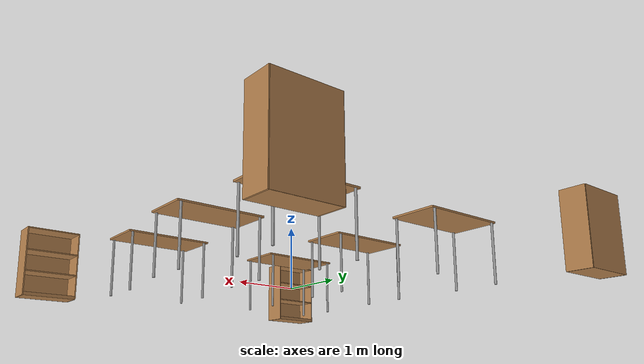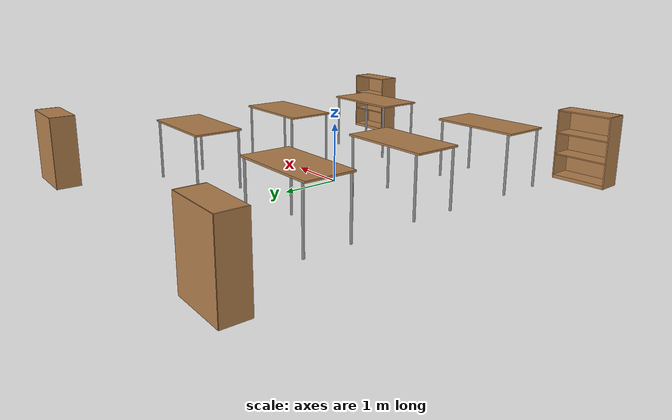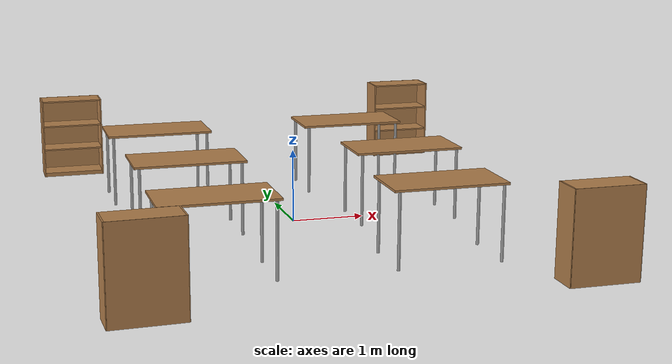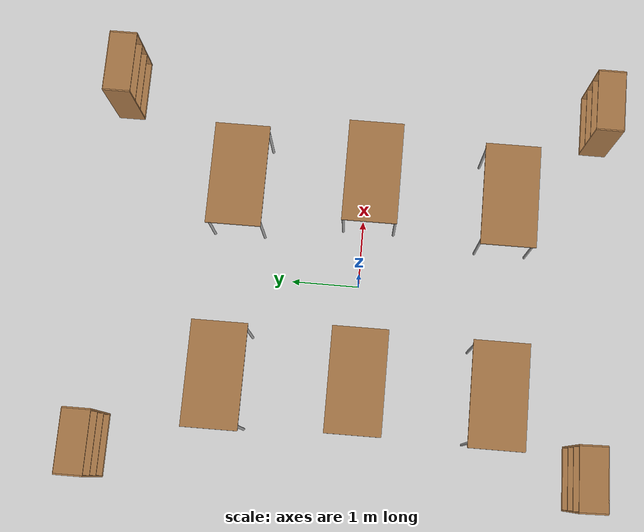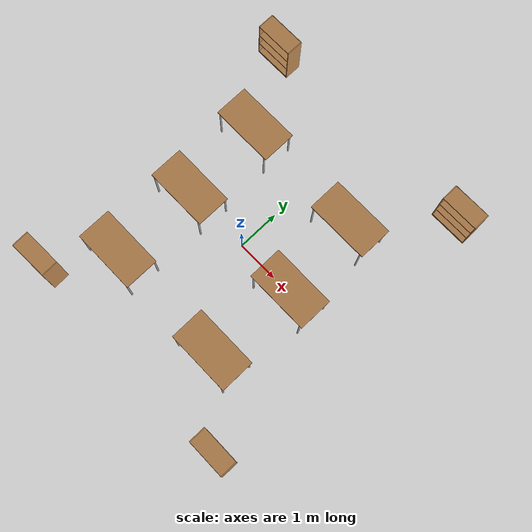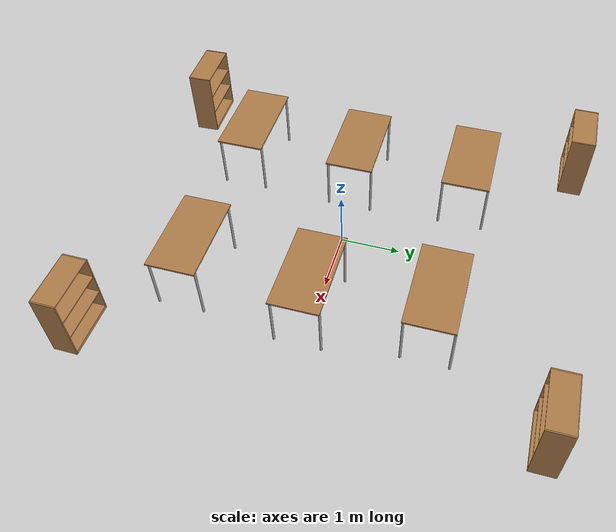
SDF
<?xml version='1.0'?>
<sdf version='1.6'>
  <model name='room2'>
    <model name='bookshelf'>
      <static>1</static>
      <link name='link'>
        <inertial>
          <mass>1</mass>
        </inertial>
        <collision name='back'>
          <pose frame=''>0 0.005 0.6 0 -0 0</pose>
          <geometry>
            <box>
              <size>0.9 0.01 1.2</size>
            </box>
          </geometry>
        </collision>
        <visual name='visual1'>
          <pose frame=''>0 0.005 0.6 0 -0 0</pose>
          <geometry>
            <box>
              <size>0.9 0.01 1.2</size>
            </box>
          </geometry>
          <material>
            <script>
              <uri>file://media/materials/scripts/gazebo.material</uri>
              <name>Gazebo/Wood</name>
            </script>
          </material>
        </visual>
        <collision name='left_side'>
          <pose frame=''>0.45 -0.195 0.6 0 -0 0</pose>
          <geometry>
            <box>
              <size>0.02 0.4 1.2</size>
            </box>
          </geometry>
        </collision>
        <visual name='visual2'>
          <pose frame=''>0.45 -0.195 0.6 0 -0 0</pose>
          <geometry>
            <box>
              <size>0.02 0.4 1.2</size>
            </box>
          </geometry>
          <material>
            <script>
              <uri>file://media/materials/scripts/gazebo.material</uri>
              <name>Gazebo/Wood</name>
            </script>
          </material>
        </visual>
        <collision name='right_side'>
          <pose frame=''>-0.45 -0.195 0.6 0 -0 0</pose>
          <geometry>
            <box>
              <size>0.02 0.4 1.2</size>
            </box>
          </geometry>
        </collision>
        <visual name='visual3'>
          <pose frame=''>-0.45 -0.195 0.6 0 -0 0</pose>
          <geometry>
            <box>
              <size>0.02 0.4 1.2</size>
            </box>
          </geometry>
          <material>
            <script>
              <uri>file://media/materials/scripts/gazebo.material</uri>
              <name>Gazebo/Wood</name>
            </script>
          </material>
        </visual>
        <collision name='bottom'>
          <pose frame=''>0 -0.195 0.03 0 -0 0</pose>
          <geometry>
            <box>
              <size>0.88 0.4 0.06</size>
            </box>
          </geometry>
        </collision>
        <visual name='visual4'>
          <pose frame=''>0 -0.195 0.03 0 -0 0</pose>
          <geometry>
            <box>
              <size>0.88 0.4 0.06</size>
            </box>
          </geometry>
          <material>
            <script>
              <uri>file://media/materials/scripts/gazebo.material</uri>
              <name>Gazebo/Wood</name>
            </script>
          </material>
        </visual>
        <collision name='top'>
          <pose frame=''>0 -0.195 1.19 0 -0 0</pose>
          <geometry>
            <box>
              <size>0.88 0.4 0.02</size>
            </box>
          </geometry>
        </collision>
        <visual name='visual5'>
          <pose frame=''>0 -0.195 1.19 0 -0 0</pose>
          <geometry>
            <box>
              <size>0.88 0.4 0.02</size>
            </box>
          </geometry>
          <material>
            <script>
              <uri>file://media/materials/scripts/gazebo.material</uri>
              <name>Gazebo/Wood</name>
            </script>
          </material>
        </visual>
        <collision name='low_shelf'>
          <pose frame=''>0 -0.195 0.43 0 -0 0</pose>
          <geometry>
            <box>
              <size>0.88 0.4 0.02</size>
            </box>
          </geometry>
        </collision>
        <visual name='visual6'>
          <pose frame=''>0 -0.195 0.43 0 -0 0</pose>
          <geometry>
            <box>
              <size>0.88 0.4 0.02</size>
            </box>
          </geometry>
          <material>
            <script>
              <uri>file://media/materials/scripts/gazebo.material</uri>
              <name>Gazebo/Wood</name>
            </script>
          </material>
        </visual>
        <collision name='high_shelf'>
          <pose frame=''>0 -0.195 0.8 0 -0 0</pose>
          <geometry>
            <box>
              <size>0.88 0.4 0.02</size>
            </box>
          </geometry>
        </collision>
        <visual name='visual7'>
          <pose frame=''>0 -0.195 0.8 0 -0 0</pose>
          <geometry>
            <box>
              <size>0.88 0.4 0.02</size>
            </box>
          </geometry>
          <material>
            <script>
              <uri>file://media/materials/scripts/gazebo.material</uri>
              <name>Gazebo/Wood</name>
            </script>
          </material>
        </visual>
      </link>
      <pose frame=''>2.83384 3.91449 -0.000271 0 -0 0</pose>
    </model>
    <model name='bookshelf_0'>
      <static>1</static>
      <link name='link'>
        <inertial>
          <mass>1</mass>
        </inertial>
        <collision name='back'>
          <pose frame=''>0 0.005 0.6 0 -0 0</pose>
          <geometry>
            <box>
              <size>0.9 0.01 1.2</size>
            </box>
          </geometry>
        </collision>
        <visual name='visual1'>
          <pose frame=''>0 0.005 0.6 0 -0 0</pose>
          <geometry>
            <box>
              <size>0.9 0.01 1.2</size>
            </box>
          </geometry>
          <material>
            <script>
              <uri>file://media/materials/scripts/gazebo.material</uri>
              <name>Gazebo/Wood</name>
            </script>
          </material>
        </visual>
        <collision name='left_side'>
          <pose frame=''>0.45 -0.195 0.6 0 -0 0</pose>
          <geometry>
            <box>
              <size>0.02 0.4 1.2</size>
            </box>
          </geometry>
        </collision>
        <visual name='visual2'>
          <pose frame=''>0.45 -0.195 0.6 0 -0 0</pose>
          <geometry>
            <box>
              <size>0.02 0.4 1.2</size>
            </box>
          </geometry>
          <material>
            <script>
              <uri>file://media/materials/scripts/gazebo.material</uri>
              <name>Gazebo/Wood</name>
            </script>
          </material>
        </visual>
        <collision name='right_side'>
          <pose frame=''>-0.45 -0.195 0.6 0 -0 0</pose>
          <geometry>
            <box>
              <size>0.02 0.4 1.2</size>
            </box>
          </geometry>
        </collision>
        <visual name='visual3'>
          <pose frame=''>-0.45 -0.195 0.6 0 -0 0</pose>
          <geometry>
            <box>
              <size>0.02 0.4 1.2</size>
            </box>
          </geometry>
          <material>
            <script>
              <uri>file://media/materials/scripts/gazebo.material</uri>
              <name>Gazebo/Wood</name>
            </script>
          </material>
        </visual>
        <collision name='bottom'>
          <pose frame=''>0 -0.195 0.03 0 -0 0</pose>
          <geometry>
            <box>
              <size>0.88 0.4 0.06</size>
            </box>
          </geometry>
        </collision>
        <visual name='visual4'>
          <pose frame=''>0 -0.195 0.03 0 -0 0</pose>
          <geometry>
            <box>
              <size>0.88 0.4 0.06</size>
            </box>
          </geometry>
          <material>
            <script>
              <uri>file://media/materials/scripts/gazebo.material</uri>
              <name>Gazebo/Wood</name>
            </script>
          </material>
        </visual>
        <collision name='top'>
          <pose frame=''>0 -0.195 1.19 0 -0 0</pose>
          <geometry>
            <box>
              <size>0.88 0.4 0.02</size>
            </box>
          </geometry>
        </collision>
        <visual name='visual5'>
          <pose frame=''>0 -0.195 1.19 0 -0 0</pose>
          <geometry>
            <box>
              <size>0.88 0.4 0.02</size>
            </box>
          </geometry>
          <material>
            <script>
              <uri>file://media/materials/scripts/gazebo.material</uri>
              <name>Gazebo/Wood</name>
            </script>
          </material>
        </visual>
        <collision name='low_shelf'>
          <pose frame=''>0 -0.195 0.43 0 -0 0</pose>
          <geometry>
            <box>
              <size>0.88 0.4 0.02</size>
            </box>
          </geometry>
        </collision>
        <visual name='visual6'>
          <pose frame=''>0 -0.195 0.43 0 -0 0</pose>
          <geometry>
            <box>
              <size>0.88 0.4 0.02</size>
            </box>
          </geometry>
          <material>
            <script>
              <uri>file://media/materials/scripts/gazebo.material</uri>
              <name>Gazebo/Wood</name>
            </script>
          </material>
        </visual>
        <collision name='high_shelf'>
          <pose frame=''>0 -0.195 0.8 0 -0 0</pose>
          <geometry>
            <box>
              <size>0.88 0.4 0.02</size>
            </box>
          </geometry>
        </collision>
        <visual name='visual7'>
          <pose frame=''>0 -0.195 0.8 0 -0 0</pose>
          <geometry>
            <box>
              <size>0.88 0.4 0.02</size>
            </box>
          </geometry>
          <material>
            <script>
              <uri>file://media/materials/scripts/gazebo.material</uri>
              <name>Gazebo/Wood</name>
            </script>
          </material>
        </visual>
      </link>
      <pose frame=''>-2.64723 3.87983 -0.000271 0 -0 0</pose>
    </model>
    <model name='bookshelf_1'>
      <static>1</static>
      <link name='link'>
        <inertial>
          <mass>1</mass>
        </inertial>
        <collision name='back'>
          <pose frame=''>0 0.005 0.6 0 -0 0</pose>
          <geometry>
            <box>
              <size>0.9 0.01 1.2</size>
            </box>
          </geometry>
        </collision>
        <visual name='visual1'>
          <pose frame=''>0 0.005 0.6 0 -0 0</pose>
          <geometry>
            <box>
              <size>0.9 0.01 1.2</size>
            </box>
          </geometry>
          <material>
            <script>
              <uri>file://media/materials/scripts/gazebo.material</uri>
              <name>Gazebo/Wood</name>
            </script>
          </material>
        </visual>
        <collision name='left_side'>
          <pose frame=''>0.45 -0.195 0.6 0 -0 0</pose>
          <geometry>
            <box>
              <size>0.02 0.4 1.2</size>
            </box>
          </geometry>
        </collision>
        <visual name='visual2'>
          <pose frame=''>0.45 -0.195 0.6 0 -0 0</pose>
          <geometry>
            <box>
              <size>0.02 0.4 1.2</size>
            </box>
          </geometry>
          <material>
            <script>
              <uri>file://media/materials/scripts/gazebo.material</uri>
              <name>Gazebo/Wood</name>
            </script>
          </material>
        </visual>
        <collision name='right_side'>
          <pose frame=''>-0.45 -0.195 0.6 0 -0 0</pose>
          <geometry>
            <box>
              <size>0.02 0.4 1.2</size>
            </box>
          </geometry>
        </collision>
        <visual name='visual3'>
          <pose frame=''>-0.45 -0.195 0.6 0 -0 0</pose>
          <geometry>
            <box>
              <size>0.02 0.4 1.2</size>
            </box>
          </geometry>
          <material>
            <script>
              <uri>file://media/materials/scripts/gazebo.material</uri>
              <name>Gazebo/Wood</name>
            </script>
          </material>
        </visual>
        <collision name='bottom'>
          <pose frame=''>0 -0.195 0.03 0 -0 0</pose>
          <geometry>
            <box>
              <size>0.88 0.4 0.06</size>
            </box>
          </geometry>
        </collision>
        <visual name='visual4'>
          <pose frame=''>0 -0.195 0.03 0 -0 0</pose>
          <geometry>
            <box>
              <size>0.88 0.4 0.06</size>
            </box>
          </geometry>
          <material>
            <script>
              <uri>file://media/materials/scripts/gazebo.material</uri>
              <name>Gazebo/Wood</name>
            </script>
          </material>
        </visual>
        <collision name='top'>
          <pose frame=''>0 -0.195 1.19 0 -0 0</pose>
          <geometry>
            <box>
              <size>0.88 0.4 0.02</size>
            </box>
          </geometry>
        </collision>
        <visual name='visual5'>
          <pose frame=''>0 -0.195 1.19 0 -0 0</pose>
          <geometry>
            <box>
              <size>0.88 0.4 0.02</size>
            </box>
          </geometry>
          <material>
            <script>
              <uri>file://media/materials/scripts/gazebo.material</uri>
              <name>Gazebo/Wood</name>
            </script>
          </material>
        </visual>
        <collision name='low_shelf'>
          <pose frame=''>0 -0.195 0.43 0 -0 0</pose>
          <geometry>
            <box>
              <size>0.88 0.4 0.02</size>
            </box>
          </geometry>
        </collision>
        <visual name='visual6'>
          <pose frame=''>0 -0.195 0.43 0 -0 0</pose>
          <geometry>
            <box>
              <size>0.88 0.4 0.02</size>
            </box>
          </geometry>
          <material>
            <script>
              <uri>file://media/materials/scripts/gazebo.material</uri>
              <name>Gazebo/Wood</name>
            </script>
          </material>
        </visual>
        <collision name='high_shelf'>
          <pose frame=''>0 -0.195 0.8 0 -0 0</pose>
          <geometry>
            <box>
              <size>0.88 0.4 0.02</size>
            </box>
          </geometry>
        </collision>
        <visual name='visual7'>
          <pose frame=''>0 -0.195 0.8 0 -0 0</pose>
          <geometry>
            <box>
              <size>0.88 0.4 0.02</size>
            </box>
          </geometry>
          <material>
            <script>
              <uri>file://media/materials/scripts/gazebo.material</uri>
              <name>Gazebo/Wood</name>
            </script>
          </material>
        </visual>
      </link>
      <pose frame=''>2.81028 -3.6314 -0.000271 0 -0 3.13704</pose>
    </model>
    <model name='bookshelf_2'>
      <static>1</static>
      <link name='link'>
        <inertial>
          <mass>1</mass>
        </inertial>
        <collision name='back'>
          <pose frame=''>0 0.005 0.6 0 -0 0</pose>
          <geometry>
            <box>
              <size>0.9 0.01 1.2</size>
            </box>
          </geometry>
        </collision>
        <visual name='visual1'>
          <pose frame=''>0 0.005 0.6 0 -0 0</pose>
          <geometry>
            <box>
              <size>0.9 0.01 1.2</size>
            </box>
          </geometry>
          <material>
            <script>
              <uri>file://media/materials/scripts/gazebo.material</uri>
              <name>Gazebo/Wood</name>
            </script>
          </material>
        </visual>
        <collision name='left_side'>
          <pose frame=''>0.45 -0.195 0.6 0 -0 0</pose>
          <geometry>
            <box>
              <size>0.02 0.4 1.2</size>
            </box>
          </geometry>
        </collision>
        <visual name='visual2'>
          <pose frame=''>0.45 -0.195 0.6 0 -0 0</pose>
          <geometry>
            <box>
              <size>0.02 0.4 1.2</size>
            </box>
          </geometry>
          <material>
            <script>
              <uri>file://media/materials/scripts/gazebo.material</uri>
              <name>Gazebo/Wood</name>
            </script>
          </material>
        </visual>
        <collision name='right_side'>
          <pose frame=''>-0.45 -0.195 0.6 0 -0 0</pose>
          <geometry>
            <box>
              <size>0.02 0.4 1.2</size>
            </box>
          </geometry>
        </collision>
        <visual name='visual3'>
          <pose frame=''>-0.45 -0.195 0.6 0 -0 0</pose>
          <geometry>
            <box>
              <size>0.02 0.4 1.2</size>
            </box>
          </geometry>
          <material>
            <script>
              <uri>file://media/materials/scripts/gazebo.material</uri>
              <name>Gazebo/Wood</name>
            </script>
          </material>
        </visual>
        <collision name='bottom'>
          <pose frame=''>0 -0.195 0.03 0 -0 0</pose>
          <geometry>
            <box>
              <size>0.88 0.4 0.06</size>
            </box>
          </geometry>
        </collision>
        <visual name='visual4'>
          <pose frame=''>0 -0.195 0.03 0 -0 0</pose>
          <geometry>
            <box>
              <size>0.88 0.4 0.06</size>
            </box>
          </geometry>
          <material>
            <script>
              <uri>file://media/materials/scripts/gazebo.material</uri>
              <name>Gazebo/Wood</name>
            </script>
          </material>
        </visual>
        <collision name='top'>
          <pose frame=''>0 -0.195 1.19 0 -0 0</pose>
          <geometry>
            <box>
              <size>0.88 0.4 0.02</size>
            </box>
          </geometry>
        </collision>
        <visual name='visual5'>
          <pose frame=''>0 -0.195 1.19 0 -0 0</pose>
          <geometry>
            <box>
              <size>0.88 0.4 0.02</size>
            </box>
          </geometry>
          <material>
            <script>
              <uri>file://media/materials/scripts/gazebo.material</uri>
              <name>Gazebo/Wood</name>
            </script>
          </material>
        </visual>
        <collision name='low_shelf'>
          <pose frame=''>0 -0.195 0.43 0 -0 0</pose>
          <geometry>
            <box>
              <size>0.88 0.4 0.02</size>
            </box>
          </geometry>
        </collision>
        <visual name='visual6'>
          <pose frame=''>0 -0.195 0.43 0 -0 0</pose>
          <geometry>
            <box>
              <size>0.88 0.4 0.02</size>
            </box>
          </geometry>
          <material>
            <script>
              <uri>file://media/materials/scripts/gazebo.material</uri>
              <name>Gazebo/Wood</name>
            </script>
          </material>
        </visual>
        <collision name='high_shelf'>
          <pose frame=''>0 -0.195 0.8 0 -0 0</pose>
          <geometry>
            <box>
              <size>0.88 0.4 0.02</size>
            </box>
          </geometry>
        </collision>
        <visual name='visual7'>
          <pose frame=''>0 -0.195 0.8 0 -0 0</pose>
          <geometry>
            <box>
              <size>0.88 0.4 0.02</size>
            </box>
          </geometry>
          <material>
            <script>
              <uri>file://media/materials/scripts/gazebo.material</uri>
              <name>Gazebo/Wood</name>
            </script>
          </material>
        </visual>
      </link>
      <pose frame=''>-2.57339 -3.57221 0.002437 0 0 -3.11122</pose>
    </model>
    <model name='table'>
      <static>1</static>
      <link name='link'>
        <collision name='surface'>
          <pose frame=''>0 0 1 0 -0 0</pose>
          <geometry>
            <box>
              <size>1.5 0.8 0.03</size>
            </box>
          </geometry>
          <surface>
            <friction>
              <ode>
                <mu>0.6</mu>
                <mu2>0.6</mu2>
              </ode>
            </friction>
          </surface>
        </collision>
        <visual name='visual1'>
          <pose frame=''>0 0 1 0 -0 0</pose>
          <geometry>
            <box>
              <size>1.5 0.8 0.03</size>
            </box>
          </geometry>
          <material>
            <script>
              <uri>file://media/materials/scripts/gazebo.material</uri>
              <name>Gazebo/Wood</name>
            </script>
          </material>
        </visual>
        <collision name='front_left_leg'>
          <pose frame=''>0.68 0.38 0.5 0 -0 0</pose>
          <geometry>
            <cylinder>
              <radius>0.02</radius>
              <length>1</length>
            </cylinder>
          </geometry>
        </collision>
        <visual name='front_left_leg'>
          <pose frame=''>0.68 0.38 0.5 0 -0 0</pose>
          <geometry>
            <cylinder>
              <radius>0.02</radius>
              <length>1</length>
            </cylinder>
          </geometry>
          <material>
            <script>
              <uri>file://media/materials/scripts/gazebo.material</uri>
              <name>Gazebo/Grey</name>
            </script>
          </material>
        </visual>
        <collision name='front_right_leg'>
          <pose frame=''>0.68 -0.38 0.5 0 -0 0</pose>
          <geometry>
            <cylinder>
              <radius>0.02</radius>
              <length>1</length>
            </cylinder>
          </geometry>
        </collision>
        <visual name='front_right_leg'>
          <pose frame=''>0.68 -0.38 0.5 0 -0 0</pose>
          <geometry>
            <cylinder>
              <radius>0.02</radius>
              <length>1</length>
            </cylinder>
          </geometry>
          <material>
            <script>
              <uri>file://media/materials/scripts/gazebo.material</uri>
              <name>Gazebo/Grey</name>
            </script>
          </material>
        </visual>
        <collision name='back_right_leg'>
          <pose frame=''>-0.68 -0.38 0.5 0 -0 0</pose>
          <geometry>
            <cylinder>
              <radius>0.02</radius>
              <length>1</length>
            </cylinder>
          </geometry>
        </collision>
        <visual name='back_right_leg'>
          <pose frame=''>-0.68 -0.38 0.5 0 -0 0</pose>
          <geometry>
            <cylinder>
              <radius>0.02</radius>
              <length>1</length>
            </cylinder>
          </geometry>
          <material>
            <script>
              <uri>file://media/materials/scripts/gazebo.material</uri>
              <name>Gazebo/Grey</name>
            </script>
          </material>
        </visual>
        <collision name='back_left_leg'>
          <pose frame=''>-0.68 0.38 0.5 0 -0 0</pose>
          <geometry>
            <cylinder>
              <radius>0.02</radius>
              <length>1</length>
            </cylinder>
          </geometry>
        </collision>
        <visual name='back_left_leg'>
          <pose frame=''>-0.68 0.38 0.5 0 -0 0</pose>
          <geometry>
            <cylinder>
              <radius>0.02</radius>
              <length>1</length>
            </cylinder>
          </geometry>
          <material>
            <script>
              <uri>file://media/materials/scripts/gazebo.material</uri>
              <name>Gazebo/Grey</name>
            </script>
          </material>
        </visual>
      </link>
      <pose frame=''>1.32961 1.85544 -0.000271 0 -0 0</pose>
    </model>
    <model name='table_0'>
      <static>1</static>
      <link name='link'>
        <collision name='surface'>
          <pose frame=''>0 0 1 0 -0 0</pose>
          <geometry>
            <box>
              <size>1.5 0.8 0.03</size>
            </box>
          </geometry>
          <surface>
            <friction>
              <ode>
                <mu>0.6</mu>
                <mu2>0.6</mu2>
              </ode>
            </friction>
          </surface>
        </collision>
        <visual name='visual1'>
          <pose frame=''>0 0 1 0 -0 0</pose>
          <geometry>
            <box>
              <size>1.5 0.8 0.03</size>
            </box>
          </geometry>
          <material>
            <script>
              <uri>file://media/materials/scripts/gazebo.material</uri>
              <name>Gazebo/Wood</name>
            </script>
          </material>
        </visual>
        <collision name='front_left_leg'>
          <pose frame=''>0.68 0.38 0.5 0 -0 0</pose>
          <geometry>
            <cylinder>
              <radius>0.02</radius>
              <length>1</length>
            </cylinder>
          </geometry>
        </collision>
        <visual name='front_left_leg'>
          <pose frame=''>0.68 0.38 0.5 0 -0 0</pose>
          <geometry>
            <cylinder>
              <radius>0.02</radius>
              <length>1</length>
            </cylinder>
          </geometry>
          <material>
            <script>
              <uri>file://media/materials/scripts/gazebo.material</uri>
              <name>Gazebo/Grey</name>
            </script>
          </material>
        </visual>
        <collision name='front_right_leg'>
          <pose frame=''>0.68 -0.38 0.5 0 -0 0</pose>
          <geometry>
            <cylinder>
              <radius>0.02</radius>
              <length>1</length>
            </cylinder>
          </geometry>
        </collision>
        <visual name='front_right_leg'>
          <pose frame=''>0.68 -0.38 0.5 0 -0 0</pose>
          <geometry>
            <cylinder>
              <radius>0.02</radius>
              <length>1</length>
            </cylinder>
          </geometry>
          <material>
            <script>
              <uri>file://media/materials/scripts/gazebo.material</uri>
              <name>Gazebo/Grey</name>
            </script>
          </material>
        </visual>
        <collision name='back_right_leg'>
          <pose frame=''>-0.68 -0.38 0.5 0 -0 0</pose>
          <geometry>
            <cylinder>
              <radius>0.02</radius>
              <length>1</length>
            </cylinder>
          </geometry>
        </collision>
        <visual name='back_right_leg'>
          <pose frame=''>-0.68 -0.38 0.5 0 -0 0</pose>
          <geometry>
            <cylinder>
              <radius>0.02</radius>
              <length>1</length>
            </cylinder>
          </geometry>
          <material>
            <script>
              <uri>file://media/materials/scripts/gazebo.material</uri>
              <name>Gazebo/Grey</name>
            </script>
          </material>
        </visual>
        <collision name='back_left_leg'>
          <pose frame=''>-0.68 0.38 0.5 0 -0 0</pose>
          <geometry>
            <cylinder>
              <radius>0.02</radius>
              <length>1</length>
            </cylinder>
          </geometry>
        </collision>
        <visual name='back_left_leg'>
          <pose frame=''>-0.68 0.38 0.5 0 -0 0</pose>
          <geometry>
            <cylinder>
              <radius>0.02</radius>
              <length>1</length>
            </cylinder>
          </geometry>
          <material>
            <script>
              <uri>file://media/materials/scripts/gazebo.material</uri>
              <name>Gazebo/Grey</name>
            </script>
          </material>
        </visual>
      </link>
      <pose frame=''>1.52578 -0.085101 -0.000271 0 -0 0</pose>
    </model>
    <model name='table_1'>
      <static>1</static>
      <link name='link'>
        <collision name='surface'>
          <pose frame=''>0 0 1 0 -0 0</pose>
          <geometry>
            <box>
              <size>1.5 0.8 0.03</size>
            </box>
          </geometry>
          <surface>
            <friction>
              <ode>
                <mu>0.6</mu>
                <mu2>0.6</mu2>
              </ode>
            </friction>
          </surface>
        </collision>
        <visual name='visual1'>
          <pose frame=''>0 0 1 0 -0 0</pose>
          <geometry>
            <box>
              <size>1.5 0.8 0.03</size>
            </box>
          </geometry>
          <material>
            <script>
              <uri>file://media/materials/scripts/gazebo.material</uri>
              <name>Gazebo/Wood</name>
            </script>
          </material>
        </visual>
        <collision name='front_left_leg'>
          <pose frame=''>0.68 0.38 0.5 0 -0 0</pose>
          <geometry>
            <cylinder>
              <radius>0.02</radius>
              <length>1</length>
            </cylinder>
          </geometry>
        </collision>
        <visual name='front_left_leg'>
          <pose frame=''>0.68 0.38 0.5 0 -0 0</pose>
          <geometry>
            <cylinder>
              <radius>0.02</radius>
              <length>1</length>
            </cylinder>
          </geometry>
          <material>
            <script>
              <uri>file://media/materials/scripts/gazebo.material</uri>
              <name>Gazebo/Grey</name>
            </script>
          </material>
        </visual>
        <collision name='front_right_leg'>
          <pose frame=''>0.68 -0.38 0.5 0 -0 0</pose>
          <geometry>
            <cylinder>
              <radius>0.02</radius>
              <length>1</length>
            </cylinder>
          </geometry>
        </collision>
        <visual name='front_right_leg'>
          <pose frame=''>0.68 -0.38 0.5 0 -0 0</pose>
          <geometry>
            <cylinder>
              <radius>0.02</radius>
              <length>1</length>
            </cylinder>
          </geometry>
          <material>
            <script>
              <uri>file://media/materials/scripts/gazebo.material</uri>
              <name>Gazebo/Grey</name>
            </script>
          </material>
        </visual>
        <collision name='back_right_leg'>
          <pose frame=''>-0.68 -0.38 0.5 0 -0 0</pose>
          <geometry>
            <cylinder>
              <radius>0.02</radius>
              <length>1</length>
            </cylinder>
          </geometry>
        </collision>
        <visual name='back_right_leg'>
          <pose frame=''>-0.68 -0.38 0.5 0 -0 0</pose>
          <geometry>
            <cylinder>
              <radius>0.02</radius>
              <length>1</length>
            </cylinder>
          </geometry>
          <material>
            <script>
              <uri>file://media/materials/scripts/gazebo.material</uri>
              <name>Gazebo/Grey</name>
            </script>
          </material>
        </visual>
        <collision name='back_left_leg'>
          <pose frame=''>-0.68 0.38 0.5 0 -0 0</pose>
          <geometry>
            <cylinder>
              <radius>0.02</radius>
              <length>1</length>
            </cylinder>
          </geometry>
        </collision>
        <visual name='back_left_leg'>
          <pose frame=''>-0.68 0.38 0.5 0 -0 0</pose>
          <geometry>
            <cylinder>
              <radius>0.02</radius>
              <length>1</length>
            </cylinder>
          </geometry>
          <material>
            <script>
              <uri>file://media/materials/scripts/gazebo.material</uri>
              <name>Gazebo/Grey</name>
            </script>
          </material>
        </visual>
      </link>
      <pose frame=''>1.33648 -2.08741 -0.000271 0 -0 0</pose>
    </model>
    <model name='table_2'>
      <static>1</static>
      <link name='link'>
        <collision name='surface'>
          <pose frame=''>0 0 1 0 -0 0</pose>
          <geometry>
            <box>
              <size>1.5 0.8 0.03</size>
            </box>
          </geometry>
          <surface>
            <friction>
              <ode>
                <mu>0.6</mu>
                <mu2>0.6</mu2>
              </ode>
            </friction>
          </surface>
        </collision>
        <visual name='visual1'>
          <pose frame=''>0 0 1 0 -0 0</pose>
          <geometry>
            <box>
              <size>1.5 0.8 0.03</size>
            </box>
          </geometry>
          <material>
            <script>
              <uri>file://media/materials/scripts/gazebo.material</uri>
              <name>Gazebo/Wood</name>
            </script>
          </material>
        </visual>
        <collision name='front_left_leg'>
          <pose frame=''>0.68 0.38 0.5 0 -0 0</pose>
          <geometry>
            <cylinder>
              <radius>0.02</radius>
              <length>1</length>
            </cylinder>
          </geometry>
        </collision>
        <visual name='front_left_leg'>
          <pose frame=''>0.68 0.38 0.5 0 -0 0</pose>
          <geometry>
            <cylinder>
              <radius>0.02</radius>
              <length>1</length>
            </cylinder>
          </geometry>
          <material>
            <script>
              <uri>file://media/materials/scripts/gazebo.material</uri>
              <name>Gazebo/Grey</name>
            </script>
          </material>
        </visual>
        <collision name='front_right_leg'>
          <pose frame=''>0.68 -0.38 0.5 0 -0 0</pose>
          <geometry>
            <cylinder>
              <radius>0.02</radius>
              <length>1</length>
            </cylinder>
          </geometry>
        </collision>
        <visual name='front_right_leg'>
          <pose frame=''>0.68 -0.38 0.5 0 -0 0</pose>
          <geometry>
            <cylinder>
              <radius>0.02</radius>
              <length>1</length>
            </cylinder>
          </geometry>
          <material>
            <script>
              <uri>file://media/materials/scripts/gazebo.material</uri>
              <name>Gazebo/Grey</name>
            </script>
          </material>
        </visual>
        <collision name='back_right_leg'>
          <pose frame=''>-0.68 -0.38 0.5 0 -0 0</pose>
          <geometry>
            <cylinder>
              <radius>0.02</radius>
              <length>1</length>
            </cylinder>
          </geometry>
        </collision>
        <visual name='back_right_leg'>
          <pose frame=''>-0.68 -0.38 0.5 0 -0 0</pose>
          <geometry>
            <cylinder>
              <radius>0.02</radius>
              <length>1</length>
            </cylinder>
          </geometry>
          <material>
            <script>
              <uri>file://media/materials/scripts/gazebo.material</uri>
              <name>Gazebo/Grey</name>
            </script>
          </material>
        </visual>
        <collision name='back_left_leg'>
          <pose frame=''>-0.68 0.38 0.5 0 -0 0</pose>
          <geometry>
            <cylinder>
              <radius>0.02</radius>
              <length>1</length>
            </cylinder>
          </geometry>
        </collision>
        <visual name='back_left_leg'>
          <pose frame=''>-0.68 0.38 0.5 0 -0 0</pose>
          <geometry>
            <cylinder>
              <radius>0.02</radius>
              <length>1</length>
            </cylinder>
          </geometry>
          <material>
            <script>
              <uri>file://media/materials/scripts/gazebo.material</uri>
              <name>Gazebo/Grey</name>
            </script>
          </material>
        </visual>
      </link>
      <pose frame=''>-1.57346 1.88936 -0.000271 0 -0 0</pose>
    </model>
    <model name='table_3'>
      <static>1</static>
      <link name='link'>
        <collision name='surface'>
          <pose frame=''>0 0 1 0 -0 0</pose>
          <geometry>
            <box>
              <size>1.5 0.8 0.03</size>
            </box>
          </geometry>
          <surface>
            <friction>
              <ode>
                <mu>0.6</mu>
                <mu2>0.6</mu2>
              </ode>
            </friction>
          </surface>
        </collision>
        <visual name='visual1'>
          <pose frame=''>0 0 1 0 -0 0</pose>
          <geometry>
            <box>
              <size>1.5 0.8 0.03</size>
            </box>
          </geometry>
          <material>
            <script>
              <uri>file://media/materials/scripts/gazebo.material</uri>
              <name>Gazebo/Wood</name>
            </script>
          </material>
        </visual>
        <collision name='front_left_leg'>
          <pose frame=''>0.68 0.38 0.5 0 -0 0</pose>
          <geometry>
            <cylinder>
              <radius>0.02</radius>
              <length>1</length>
            </cylinder>
          </geometry>
        </collision>
        <visual name='front_left_leg'>
          <pose frame=''>0.68 0.38 0.5 0 -0 0</pose>
          <geometry>
            <cylinder>
              <radius>0.02</radius>
              <length>1</length>
            </cylinder>
          </geometry>
          <material>
            <script>
              <uri>file://media/materials/scripts/gazebo.material</uri>
              <name>Gazebo/Grey</name>
            </script>
          </material>
        </visual>
        <collision name='front_right_leg'>
          <pose frame=''>0.68 -0.38 0.5 0 -0 0</pose>
          <geometry>
            <cylinder>
              <radius>0.02</radius>
              <length>1</length>
            </cylinder>
          </geometry>
        </collision>
        <visual name='front_right_leg'>
          <pose frame=''>0.68 -0.38 0.5 0 -0 0</pose>
          <geometry>
            <cylinder>
              <radius>0.02</radius>
              <length>1</length>
            </cylinder>
          </geometry>
          <material>
            <script>
              <uri>file://media/materials/scripts/gazebo.material</uri>
              <name>Gazebo/Grey</name>
            </script>
          </material>
        </visual>
        <collision name='back_right_leg'>
          <pose frame=''>-0.68 -0.38 0.5 0 -0 0</pose>
          <geometry>
            <cylinder>
              <radius>0.02</radius>
              <length>1</length>
            </cylinder>
          </geometry>
        </collision>
        <visual name='back_right_leg'>
          <pose frame=''>-0.68 -0.38 0.5 0 -0 0</pose>
          <geometry>
            <cylinder>
              <radius>0.02</radius>
              <length>1</length>
            </cylinder>
          </geometry>
          <material>
            <script>
              <uri>file://media/materials/scripts/gazebo.material</uri>
              <name>Gazebo/Grey</name>
            </script>
          </material>
        </visual>
        <collision name='back_left_leg'>
          <pose frame=''>-0.68 0.38 0.5 0 -0 0</pose>
          <geometry>
            <cylinder>
              <radius>0.02</radius>
              <length>1</length>
            </cylinder>
          </geometry>
        </collision>
        <visual name='back_left_leg'>
          <pose frame=''>-0.68 0.38 0.5 0 -0 0</pose>
          <geometry>
            <cylinder>
              <radius>0.02</radius>
              <length>1</length>
            </cylinder>
          </geometry>
          <material>
            <script>
              <uri>file://media/materials/scripts/gazebo.material</uri>
              <name>Gazebo/Grey</name>
            </script>
          </material>
        </visual>
      </link>
      <pose frame=''>-1.5401 -2.07459 -0.000271 0 -0 0</pose>
    </model>
    <model name='table_4'>
      <static>1</static>
      <link name='link'>
        <collision name='surface'>
          <pose frame=''>0 0 1 0 -0 0</pose>
          <geometry>
            <box>
              <size>1.5 0.8 0.03</size>
            </box>
          </geometry>
          <surface>
            <friction>
              <ode>
                <mu>0.6</mu>
                <mu2>0.6</mu2>
              </ode>
            </friction>
          </surface>
        </collision>
        <visual name='visual1'>
          <pose frame=''>0 0 1 0 -0 0</pose>
          <geometry>
            <box>
              <size>1.5 0.8 0.03</size>
            </box>
          </geometry>
          <material>
            <script>
              <uri>file://media/materials/scripts/gazebo.material</uri>
              <name>Gazebo/Wood</name>
            </script>
          </material>
        </visual>
        <collision name='front_left_leg'>
          <pose frame=''>0.68 0.38 0.5 0 -0 0</pose>
          <geometry>
            <cylinder>
              <radius>0.02</radius>
              <length>1</length>
            </cylinder>
          </geometry>
        </collision>
        <visual name='front_left_leg'>
          <pose frame=''>0.68 0.38 0.5 0 -0 0</pose>
          <geometry>
            <cylinder>
              <radius>0.02</radius>
              <length>1</length>
            </cylinder>
          </geometry>
          <material>
            <script>
              <uri>file://media/materials/scripts/gazebo.material</uri>
              <name>Gazebo/Grey</name>
            </script>
          </material>
        </visual>
        <collision name='front_right_leg'>
          <pose frame=''>0.68 -0.38 0.5 0 -0 0</pose>
          <geometry>
            <cylinder>
              <radius>0.02</radius>
              <length>1</length>
            </cylinder>
          </geometry>
        </collision>
        <visual name='front_right_leg'>
          <pose frame=''>0.68 -0.38 0.5 0 -0 0</pose>
          <geometry>
            <cylinder>
              <radius>0.02</radius>
              <length>1</length>
            </cylinder>
          </geometry>
          <material>
            <script>
              <uri>file://media/materials/scripts/gazebo.material</uri>
              <name>Gazebo/Grey</name>
            </script>
          </material>
        </visual>
        <collision name='back_right_leg'>
          <pose frame=''>-0.68 -0.38 0.5 0 -0 0</pose>
          <geometry>
            <cylinder>
              <radius>0.02</radius>
              <length>1</length>
            </cylinder>
          </geometry>
        </collision>
        <visual name='back_right_leg'>
          <pose frame=''>-0.68 -0.38 0.5 0 -0 0</pose>
          <geometry>
            <cylinder>
              <radius>0.02</radius>
              <length>1</length>
            </cylinder>
          </geometry>
          <material>
            <script>
              <uri>file://media/materials/scripts/gazebo.material</uri>
              <name>Gazebo/Grey</name>
            </script>
          </material>
        </visual>
        <collision name='back_left_leg'>
          <pose frame=''>-0.68 0.38 0.5 0 -0 0</pose>
          <geometry>
            <cylinder>
              <radius>0.02</radius>
              <length>1</length>
            </cylinder>
          </geometry>
        </collision>
        <visual name='back_left_leg'>
          <pose frame=''>-0.68 0.38 0.5 0 -0 0</pose>
          <geometry>
            <cylinder>
              <radius>0.02</radius>
              <length>1</length>
            </cylinder>
          </geometry>
          <material>
            <script>
              <uri>file://media/materials/scripts/gazebo.material</uri>
              <name>Gazebo/Grey</name>
            </script>
          </material>
        </visual>
      </link>
      <pose frame=''>-1.50182 -0.08843 -0.000271 0 -0 0</pose>
    </model>
    <static>0</static>
    <allow_auto_disable>1</allow_auto_disable>
  </model>
</sdf>
